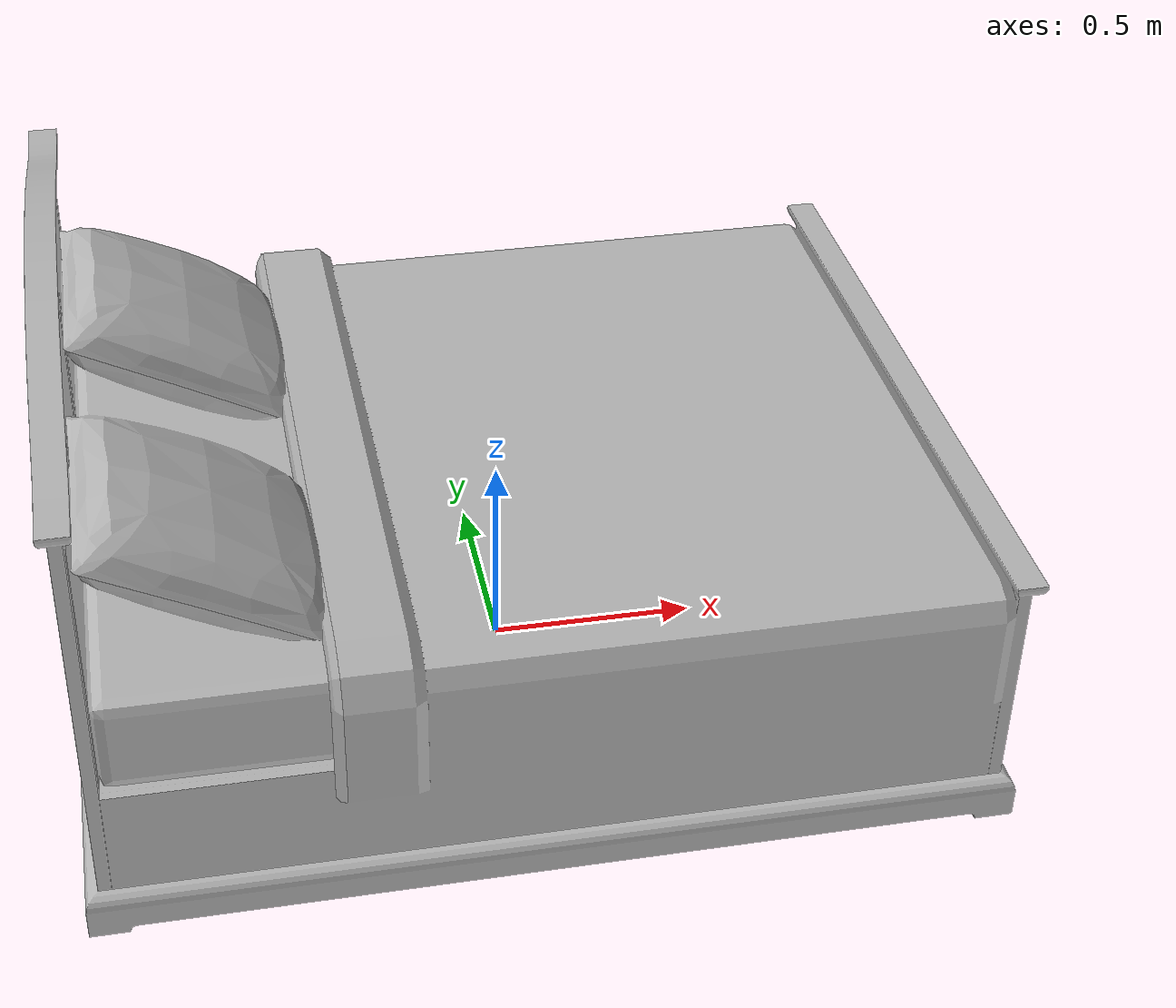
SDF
<?xml version='1.0'?>
<sdf version='1.4'>
  <model name='s__418'>
    <pose>0 0 0 0 0 0</pose>
    <static>true</static>
    <link name='link'>
      <collision name='collision'>
        <pose>0 0 0 0 0 0</pose>
        <geometry>
          <box>
            <size>2.10004 1.81 2</size>
          </box>
        </geometry>
      </collision>
      <visual name='visual'>
        <pose>0 0 0 0 0 0</pose>
        <geometry>
          <mesh><uri>model://s__418/s__418.dae</uri></mesh>
        </geometry>
      </visual>
    </link>
  </model>
</sdf>
